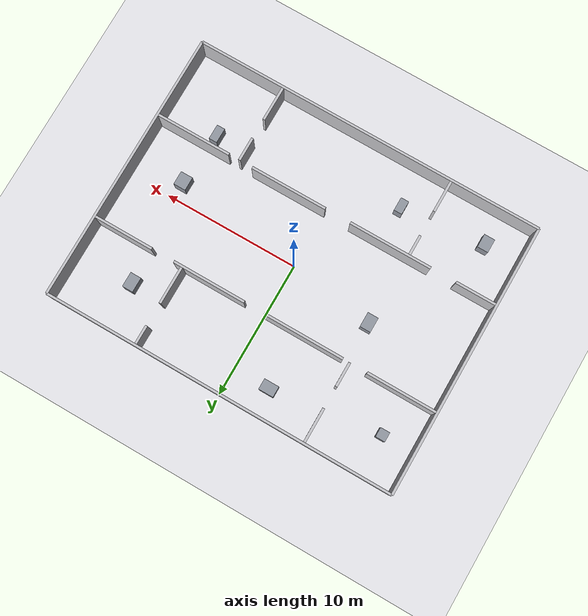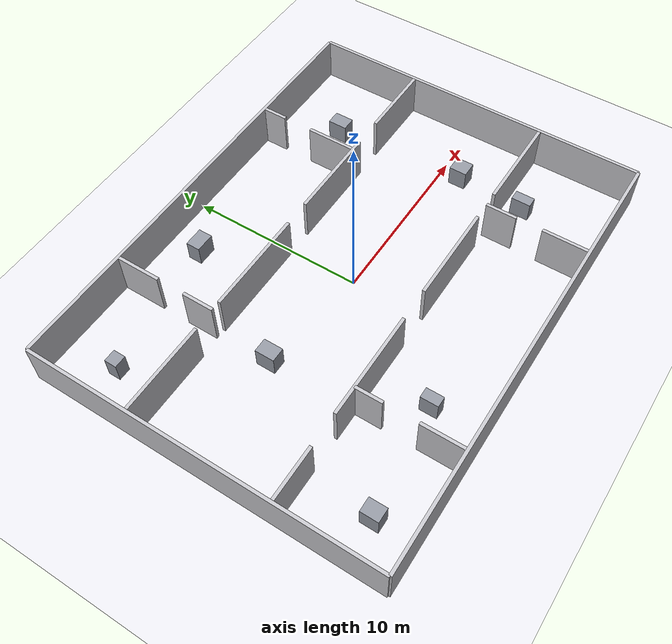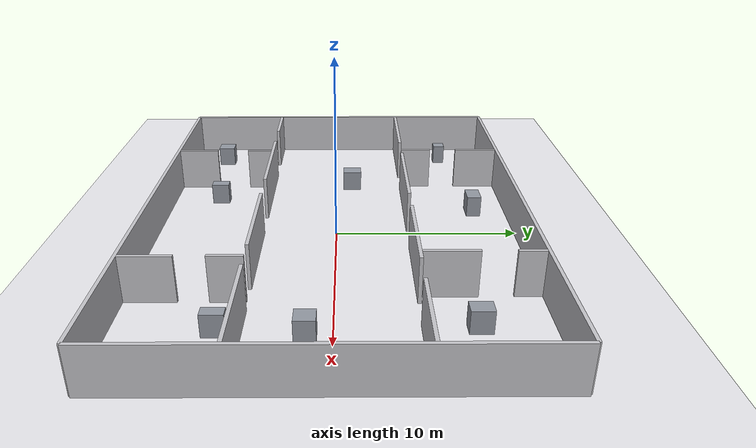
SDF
<?xml version="1.0"?>
<sdf version="1.9"><world name="new_room_world">
<plugin filename="gz-sim-physics-system" name="gz::sim::systems::Physics"/><plugin filename="gz-sim-user-commands-system" name="gz::sim::systems::UserCommands"/><plugin filename="gz-sim-scene-broadcaster-system" name="gz::sim::systems::SceneBroadcaster"/><plugin filename="gz-sim-sensors-system" name="gz::sim::systems::Sensors"><render_engine>ogre2</render_engine></plugin><plugin filename="gz-sim-imu-system" name="gz::sim::systems::Imu"/>
<physics name="new_room_realtime" type="ignored"><max_step_size>0.001</max_step_size><real_time_factor>1</real_time_factor></physics><gravity>0 0 -9.8</gravity><scene><ambient>0.85 0.85 0.87 1</ambient><background>0.68 0.68 0.71 1</background><shadows>false</shadows></scene><light name="sun" type="directional"><cast_shadows>false</cast_shadows><pose>0 0 10 0 0 0</pose><diffuse>0.95 0.95 0.95 1</diffuse><direction>-0.3 0.2 -1</direction></light>
<model name="new_room_ground"><static>true</static><link name="ground_link"><collision name="ground_collision"><geometry><plane><normal>0 0 1</normal><size>40 32</size></plane></geometry></collision><visual name="ground_visual"><geometry><plane><normal>0 0 1</normal><size>40 32</size></plane></geometry><material><ambient>0.92 0.92 0.94 1</ambient><diffuse>0.92 0.92 0.94 1</diffuse></material></visual></link></model>
<model name="mini_hospital_structure"><static>true</static><link name="structure">
<collision name="mx048_c000"><pose>0 10 1.25 0 0 0</pose><geometry><box><size>26 0.18 2.5</size></box></geometry></collision><visual name="mx048_v000"><pose>0 10 1.25 0 0 0</pose><geometry><box><size>26 0.18 2.5</size></box></geometry><material><ambient>0.78 0.78 0.80 1</ambient><diffuse>0.78 0.78 0.80 1</diffuse></material></visual>
<collision name="mx048_c001"><pose>0 -10 1.25 0 0 0</pose><geometry><box><size>26 0.18 2.5</size></box></geometry></collision><visual name="mx048_v001"><pose>0 -10 1.25 0 0 0</pose><geometry><box><size>26 0.18 2.5</size></box></geometry><material><ambient>0.78 0.78 0.80 1</ambient><diffuse>0.78 0.78 0.80 1</diffuse></material></visual>
<collision name="mx048_c002"><pose>-13 0 1.25 0 0 0</pose><geometry><box><size>0.18 20 2.5</size></box></geometry></collision><visual name="mx048_v002"><pose>-13 0 1.25 0 0 0</pose><geometry><box><size>0.18 20 2.5</size></box></geometry><material><ambient>0.78 0.78 0.80 1</ambient><diffuse>0.78 0.78 0.80 1</diffuse></material></visual>
<collision name="mx048_c003"><pose>13 0 1.25 0 0 0</pose><geometry><box><size>0.18 20 2.5</size></box></geometry></collision><visual name="mx048_v003"><pose>13 0 1.25 0 0 0</pose><geometry><box><size>0.18 20 2.5</size></box></geometry><material><ambient>0.78 0.78 0.80 1</ambient><diffuse>0.78 0.78 0.80 1</diffuse></material></visual>
<collision name="mx048_c004"><pose>-10.355 4 1.25 0 0 0</pose><geometry><box><size>5.11 0.18 2.5</size></box></geometry></collision><visual name="mx048_v004"><pose>-10.355 4 1.25 0 0 0</pose><geometry><box><size>5.11 0.18 2.5</size></box></geometry><material><ambient>0.78 0.78 0.80 1</ambient><diffuse>0.78 0.78 0.80 1</diffuse></material></visual>
<collision name="mx048_c005"><pose>-3.025 4 1.25 0 0 0</pose><geometry><box><size>5.95 0.18 2.5</size></box></geometry></collision><visual name="mx048_v005"><pose>-3.025 4 1.25 0 0 0</pose><geometry><box><size>5.95 0.18 2.5</size></box></geometry><material><ambient>0.78 0.78 0.80 1</ambient><diffuse>0.78 0.78 0.80 1</diffuse></material></visual>
<collision name="mx048_c006"><pose>4.15 4 1.25 0 0 0</pose><geometry><box><size>5.4 0.18 2.5</size></box></geometry></collision><visual name="mx048_v006"><pose>4.15 4 1.25 0 0 0</pose><geometry><box><size>5.4 0.18 2.5</size></box></geometry><material><ambient>0.78 0.78 0.80 1</ambient><diffuse>0.78 0.78 0.80 1</diffuse></material></visual>
<collision name="mx048_c007"><pose>10.73 4 1.25 0 0 0</pose><geometry><box><size>4.36 0.18 2.5</size></box></geometry></collision><visual name="mx048_v007"><pose>10.73 4 1.25 0 0 0</pose><geometry><box><size>4.36 0.18 2.5</size></box></geometry><material><ambient>0.78 0.78 0.80 1</ambient><diffuse>0.78 0.78 0.80 1</diffuse></material></visual>
<collision name="mx048_c008"><pose>-11.43 -4.1 1.25 0 0 0</pose><geometry><box><size>2.96 0.18 2.5</size></box></geometry></collision><visual name="mx048_v008"><pose>-11.43 -4.1 1.25 0 0 0</pose><geometry><box><size>2.96 0.18 2.5</size></box></geometry><material><ambient>0.78 0.78 0.80 1</ambient><diffuse>0.78 0.78 0.80 1</diffuse></material></visual>
<collision name="mx048_c009"><pose>-5 -4.1 1.25 0 0 0</pose><geometry><box><size>6.1 0.18 2.5</size></box></geometry></collision><visual name="mx048_v009"><pose>-5 -4.1 1.25 0 0 0</pose><geometry><box><size>6.1 0.18 2.5</size></box></geometry><material><ambient>0.78 0.78 0.80 1</ambient><diffuse>0.78 0.78 0.80 1</diffuse></material></visual>
<collision name="mx048_c010"><pose>2.775 -4.1 1.25 0 0 0</pose><geometry><box><size>5.65 0.18 2.5</size></box></geometry></collision><visual name="mx048_v010"><pose>2.775 -4.1 1.25 0 0 0</pose><geometry><box><size>5.65 0.18 2.5</size></box></geometry><material><ambient>0.78 0.78 0.80 1</ambient><diffuse>0.78 0.78 0.80 1</diffuse></material></visual>
<collision name="mx048_c011"><pose>10.155 -4.1 1.25 0 0 0</pose><geometry><box><size>5.51 0.18 2.5</size></box></geometry></collision><visual name="mx048_v011"><pose>10.155 -4.1 1.25 0 0 0</pose><geometry><box><size>5.51 0.18 2.5</size></box></geometry><material><ambient>0.78 0.78 0.80 1</ambient><diffuse>0.78 0.78 0.80 1</diffuse></material></visual>
<collision name="mx048_c012"><pose>-6.5 4.9 1.25 0 0 0</pose><geometry><box><size>0.18 1.8 2.5</size></box></geometry></collision><visual name="mx048_v012"><pose>-6.5 4.9 1.25 0 0 0</pose><geometry><box><size>0.18 1.8 2.5</size></box></geometry><material><ambient>0.78 0.78 0.80 1</ambient><diffuse>0.78 0.78 0.80 1</diffuse></material></visual>
<collision name="mx048_c013"><pose>-6.5 8.655 1.25 0 0 0</pose><geometry><box><size>0.18 2.51 2.5</size></box></geometry></collision><visual name="mx048_v013"><pose>-6.5 8.655 1.25 0 0 0</pose><geometry><box><size>0.18 2.51 2.5</size></box></geometry><material><ambient>0.78 0.78 0.80 1</ambient><diffuse>0.78 0.78 0.80 1</diffuse></material></visual>
<collision name="mx048_c014"><pose>6.2 5.425 1.25 0 0 0</pose><geometry><box><size>0.18 2.85 2.5</size></box></geometry></collision><visual name="mx048_v014"><pose>6.2 5.425 1.25 0 0 0</pose><geometry><box><size>0.18 2.85 2.5</size></box></geometry><material><ambient>0.78 0.78 0.80 1</ambient><diffuse>0.78 0.78 0.80 1</diffuse></material></visual>
<collision name="mx048_c015"><pose>6.2 9.23 1.25 0 0 0</pose><geometry><box><size>0.18 1.36 2.5</size></box></geometry></collision><visual name="mx048_v015"><pose>6.2 9.23 1.25 0 0 0</pose><geometry><box><size>0.18 1.36 2.5</size></box></geometry><material><ambient>0.78 0.78 0.80 1</ambient><diffuse>0.78 0.78 0.80 1</diffuse></material></visual>
<collision name="mx048_c016"><pose>-6.4 -8.73 1.25 0 0 0</pose><geometry><box><size>0.18 2.36 2.5</size></box></geometry></collision><visual name="mx048_v016"><pose>-6.4 -8.73 1.25 0 0 0</pose><geometry><box><size>0.18 2.36 2.5</size></box></geometry><material><ambient>0.78 0.78 0.80 1</ambient><diffuse>0.78 0.78 0.80 1</diffuse></material></visual>
<collision name="mx048_c017"><pose>-6.4 -4.875 1.25 0 0 0</pose><geometry><box><size>0.18 1.55 2.5</size></box></geometry></collision><visual name="mx048_v017"><pose>-6.4 -4.875 1.25 0 0 0</pose><geometry><box><size>0.18 1.55 2.5</size></box></geometry><material><ambient>0.78 0.78 0.80 1</ambient><diffuse>0.78 0.78 0.80 1</diffuse></material></visual>
<collision name="mx048_c018"><pose>6.6 -8.63 1.25 0 0 0</pose><geometry><box><size>0.18 2.56 2.5</size></box></geometry></collision><visual name="mx048_v018"><pose>6.6 -8.63 1.25 0 0 0</pose><geometry><box><size>0.18 2.56 2.5</size></box></geometry><material><ambient>0.78 0.78 0.80 1</ambient><diffuse>0.78 0.78 0.80 1</diffuse></material></visual>
<collision name="mx048_c019"><pose>6.6 -4.975 1.25 0 0 0</pose><geometry><box><size>0.18 1.75 2.5</size></box></geometry></collision><visual name="mx048_v019"><pose>6.6 -4.975 1.25 0 0 0</pose><geometry><box><size>0.18 1.75 2.5</size></box></geometry><material><ambient>0.78 0.78 0.80 1</ambient><diffuse>0.78 0.78 0.80 1</diffuse></material></visual>
<collision name="mx048_c020"><pose>-10.7 6.9 0.6 0 0 0</pose><geometry><box><size>0.7 0.7 1.2</size></box></geometry></collision><visual name="mx048_v020"><pose>-10.7 6.9 0.6 0 0 0</pose><geometry><box><size>0.7 0.7 1.2</size></box></geometry><material><ambient>0.58 0.60 0.64 1</ambient><diffuse>0.58 0.60 0.64 1</diffuse></material></visual>
<collision name="mx048_c021"><pose>-2.7 8 0.6 0 0 0</pose><geometry><box><size>1.1 0.8 1.2</size></box></geometry></collision><visual name="mx048_v021"><pose>-2.7 8 0.6 0 0 0</pose><geometry><box><size>1.1 0.8 1.2</size></box></geometry><material><ambient>0.58 0.60 0.64 1</ambient><diffuse>0.58 0.60 0.64 1</diffuse></material></visual>
<collision name="mx048_c022"><pose>8.8 6.5 0.6 0 0 0</pose><geometry><box><size>0.8 1.1 1.2</size></box></geometry></collision><visual name="mx048_v022"><pose>8.8 6.5 0.6 0 0 0</pose><geometry><box><size>0.8 1.1 1.2</size></box></geometry><material><ambient>0.58 0.60 0.64 1</ambient><diffuse>0.58 0.60 0.64 1</diffuse></material></visual>
<collision name="mx048_c023"><pose>-10.5 -7.7 0.6 0 0 0</pose><geometry><box><size>0.8 1 1.2</size></box></geometry></collision><visual name="mx048_v023"><pose>-10.5 -7.7 0.6 0 0 0</pose><geometry><box><size>0.8 1 1.2</size></box></geometry><material><ambient>0.58 0.60 0.64 1</ambient><diffuse>0.58 0.60 0.64 1</diffuse></material></visual>
<collision name="mx048_c024"><pose>-4.3 -7.1 0.6 0 0 0</pose><geometry><box><size>0.6 1 1.2</size></box></geometry></collision><visual name="mx048_v024"><pose>-4.3 -7.1 0.6 0 0 0</pose><geometry><box><size>0.6 1 1.2</size></box></geometry><material><ambient>0.58 0.60 0.64 1</ambient><diffuse>0.58 0.60 0.64 1</diffuse></material></visual>
<collision name="mx048_c025"><pose>9.1 -5.2 0.6 0 0 0</pose><geometry><box><size>0.6 1.1 1.2</size></box></geometry></collision><visual name="mx048_v025"><pose>9.1 -5.2 0.6 0 0 0</pose><geometry><box><size>0.6 1.1 1.2</size></box></geometry><material><ambient>0.58 0.60 0.64 1</ambient><diffuse>0.58 0.60 0.64 1</diffuse></material></visual>
<collision name="mx048_c026"><pose>-6.3 0.9 0.6 0 0 0</pose><geometry><box><size>0.8 1.1 1.2</size></box></geometry></collision><visual name="mx048_v026"><pose>-6.3 0.9 0.6 0 0 0</pose><geometry><box><size>0.8 1.1 1.2</size></box></geometry><material><ambient>0.58 0.60 0.64 1</ambient><diffuse>0.58 0.60 0.64 1</diffuse></material></visual>
<collision name="mx048_c027"><pose>9.4 -1.2 0.6 0 0 0</pose><geometry><box><size>0.9 1 1.2</size></box></geometry></collision><visual name="mx048_v027"><pose>9.4 -1.2 0.6 0 0 0</pose><geometry><box><size>0.9 1 1.2</size></box></geometry><material><ambient>0.58 0.60 0.64 1</ambient><diffuse>0.58 0.60 0.64 1</diffuse></material></visual>
</link></model></world></sdf>
